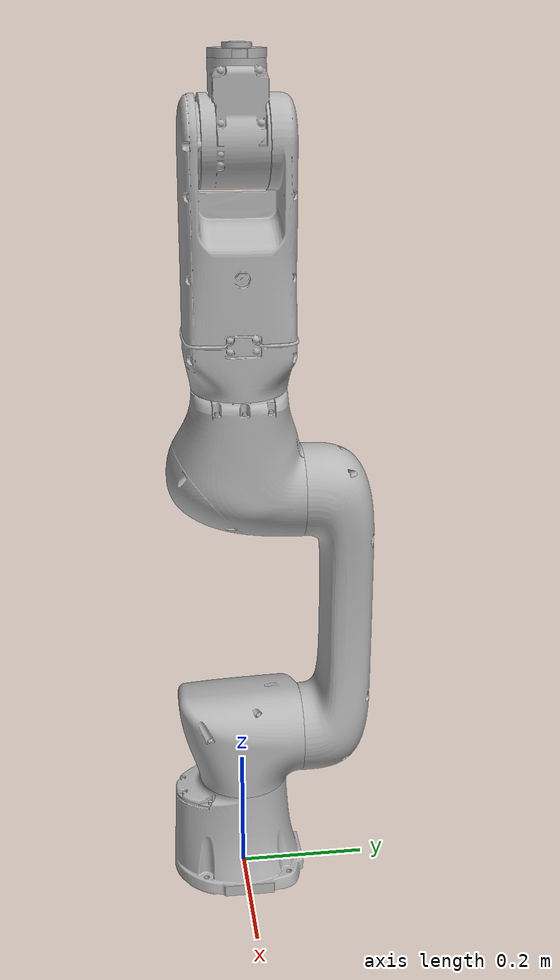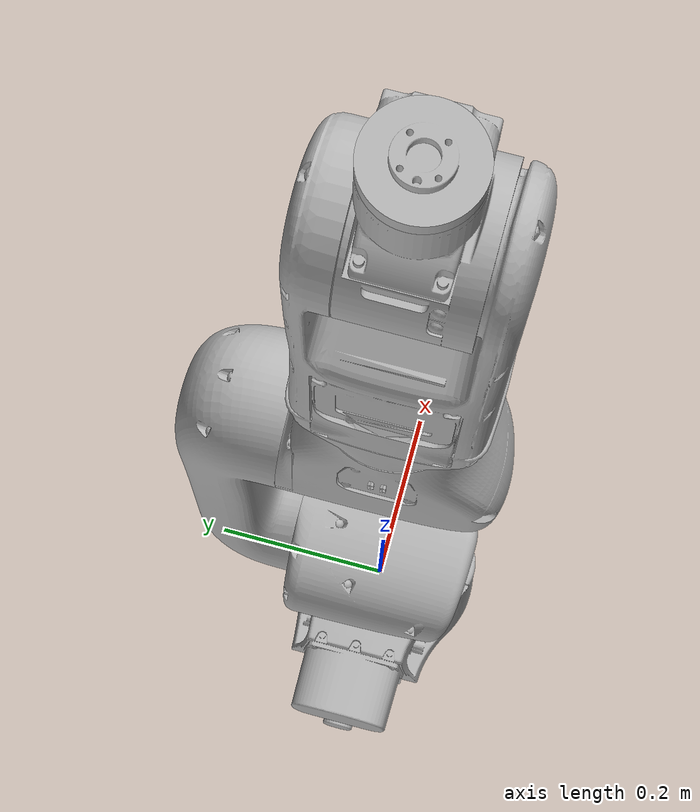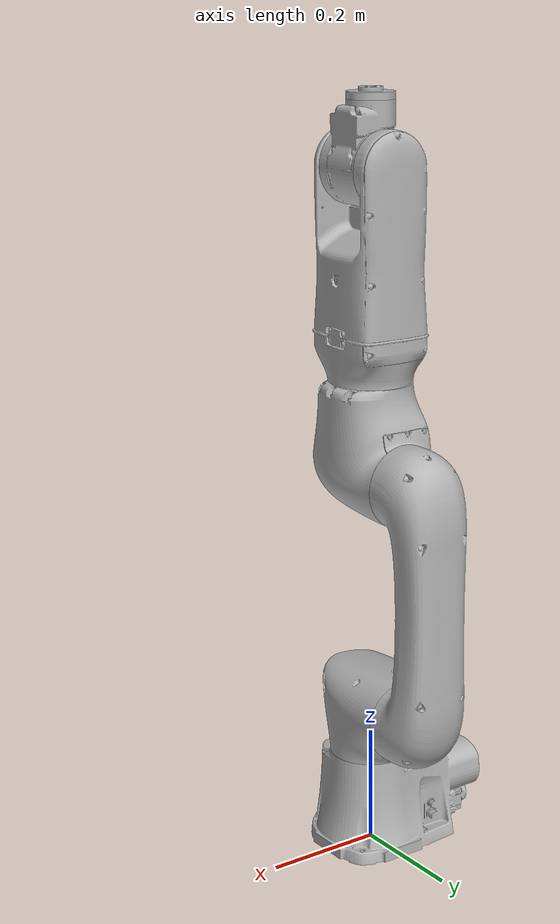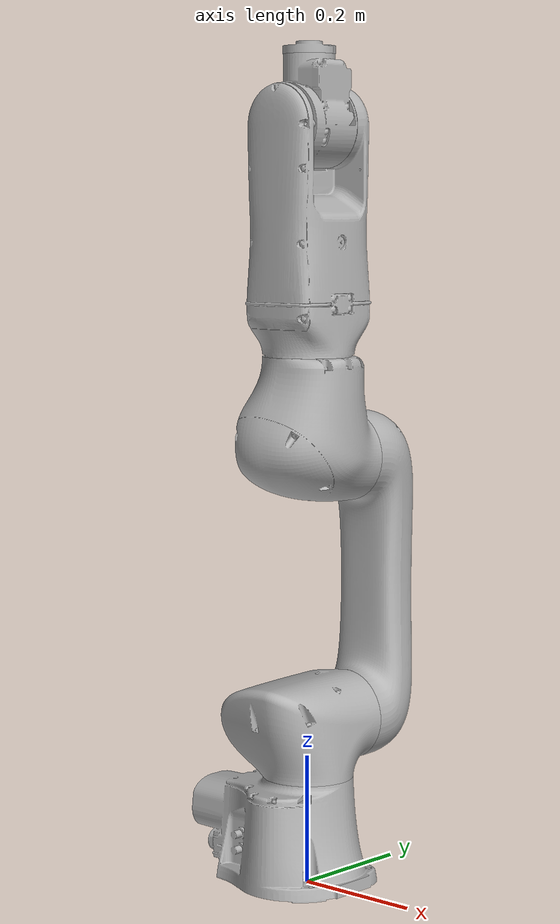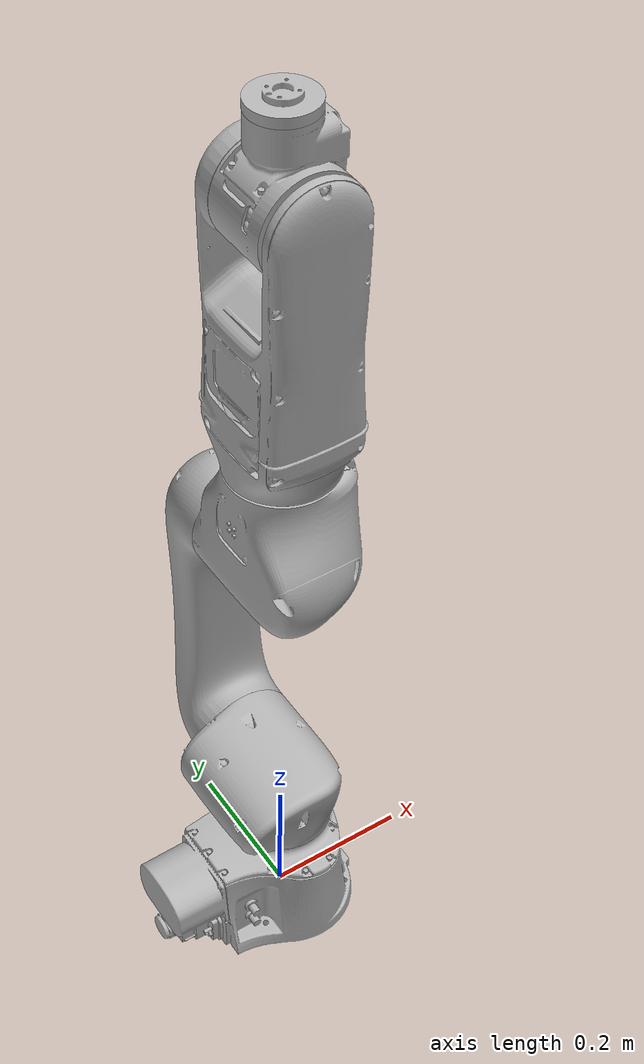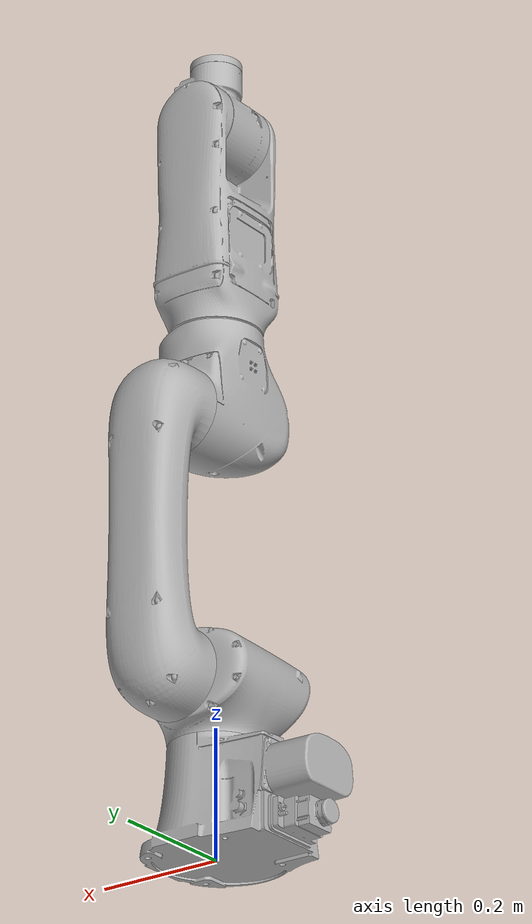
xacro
<?xml version="1.0" ?>
<robot name="Assista" xmlns:xacro="http://www.ros.org/wiki/xacro">

<!-- Enable setting arguments from the launch file -->
<xacro:arg name="use_sim" default="false" />
<xacro:arg name="use_fake_hardware" default="true" />
<xacro:arg name="robot_ip" default="127.0.0.1" />

<xacro:include filename="$(find melfa_assita_ros2_hw)/urdf/materials.xacro" />
<xacro:include filename="$(find melfa_assita_ros2_hw)/urdf/RV-5AS.gazebo" />
<xacro:include filename="$(find melfa_assita_ros2_hw)/ros2_control/melfa.ros2_control.xacro" />

<!-- Enable Gazebo Plugins -->
  <gazebo>
    <plugin filename="libgazebo_ros2_control.so" name="gazebo_ros2_control">
      <parameters>$(find melfa_assita_ros2_hw)/config/melfa_controller.yaml</parameters>
    </plugin>
  </gazebo>

<xacro:melfa_ros2_control name="melfaHW" robot_ip="$(arg robot_ip)"  use_sim="$(arg use_sim)" use_fake_hardware="$(arg use_fake_hardware)" />

<link name="world">

</link>

<link name="base_link">
  <inertial>
    <origin xyz="-0.03983651226402278 -0.007605722171635085 0.0795292300646967" rpy="0 0 0"/>
    <mass value="44.578325364776205"/>
    <inertia ixx="0.183163" iyy="0.311377" izz="0.308935" ixy="0.014262" iyz="0.002094" ixz="0.004808"/>
  </inertial>
  <visual>
    <origin xyz="0 0 0" rpy="0 0 0"/>
    <geometry>
      <mesh filename="package://melfa_assita_ros2_hw/meshes/base_link.stl" scale="0.001 0.001 0.001"/>
      <cylinder radius="0.5" length="1.0"/>
    </geometry>
    <material name="silver"/>
  </visual>
  <collision>
    <origin xyz="0 0 0" rpy="0 0 0"/>
    <geometry>
      <mesh filename="package://melfa_assita_ros2_hw/meshes/base_link.stl" scale="0.001 0.001 0.001"/>
    </geometry>
  </collision>
</link>

<link name="Link_1_1">
  <inertial>
    <origin xyz="-0.0178254958490297 0.003580380256641604 0.077127584023827" rpy="0 0 0"/>
    <mass value="30.517484297613862"/>
    <inertia ixx="0.122628" iyy="0.109719" izz="0.138698" ixy="-0.003265" iyz="0.002156" ixz="0.003964"/>
  </inertial>
  <visual>
    <origin xyz="-0.000321 -0.000483 -0.169215" rpy="0 0 0"/>
    <geometry>
      <mesh filename="package://melfa_assita_ros2_hw/meshes/Link_1_1.stl" scale="0.001 0.001 0.001"/>
    </geometry>
    <material name="silver"/>
  </visual>
  <collision>
    <origin xyz="-0.000321 -0.000483 -0.169215" rpy="0 0 0"/>
    <geometry>
      <mesh filename="package://melfa_assita_ros2_hw/meshes/Link_1_1.stl" scale="0.001 0.001 0.001"/>
    </geometry>
  </collision>
</link>

<link name="Link_2_1">
  <inertial>
    <origin xyz="4.112216997300463e-07 0.057572894819035755 0.20500042459043571" rpy="0 0 0"/>
    <mass value="40.15201189123674"/>
    <inertia ixx="1.065846" iyy="1.07798" izz="0.074735" ixy="-0.0" iyz="-0.0" ixz="1e-06"/>
  </inertial>
  <visual>
    <origin xyz="-0.000321 -0.091983 -0.252215" rpy="0 0 0"/>
    <geometry>
      <mesh filename="package://melfa_assita_ros2_hw/meshes/Link_2_1.stl" scale="0.001 0.001 0.001"/>
    </geometry>
    <material name="silver"/>
  </visual>
  <collision>
    <origin xyz="-0.000321 -0.091983 -0.252215" rpy="0 0 0"/>
    <geometry>
      <mesh filename="package://melfa_assita_ros2_hw/meshes/Link_2_1.stl" scale="0.001 0.001 0.001"/>
    </geometry>
  </collision>
</link>

<link name="Link_3_1">
  <inertial>
    <origin xyz="0.002409945789527904 -0.09056234460990852 0.04744786511656707" rpy="0 0 0"/>
    <mass value="37.70183465856231"/>
    <inertia ixx="0.213996" iyy="0.18222" izz="0.146997" ixy="-0.00227" iyz="0.008907" ixz="-0.004558"/>
  </inertial>
  <visual>
    <origin xyz="-0.000321 -0.091983 -0.662215" rpy="0 0 0"/>
    <geometry>
      <mesh filename="package://melfa_assita_ros2_hw/meshes/Link_3_1.stl" scale="0.001 0.001 0.001"/>
    </geometry>
    <material name="silver"/>
  </visual>
  <collision>
    <origin xyz="-0.000321 -0.091983 -0.662215" rpy="0 0 0"/>
    <geometry>
      <mesh filename="package://melfa_assita_ros2_hw/meshes/Link_3_1.stl" scale="0.001 0.001 0.001"/>
    </geometry>
  </collision>
</link>

<link name="Link_4_1">
  <inertial>
    <origin xyz="0.000610360450348679 0.0011924406845400205 0.15714957860817813" rpy="0 0 0"/>
    <mass value="43.96315697040174"/>
    <inertia ixx="0.546992" iyy="0.50159" izz="0.155822" ixy="3.7e-05" iyz="-0.010316" ixz="0.000504"/>
  </inertial>
  <visual>
    <origin xyz="-0.000488 -0.000483 -0.819715" rpy="0 0 0"/>
    <geometry>
      <mesh filename="package://melfa_assita_ros2_hw/meshes/Link_4_1.stl" scale="0.001 0.001 0.001"/>
    </geometry>
    <material name="silver"/>
  </visual>
  <collision>
    <origin xyz="-0.000488 -0.000483 -0.819715" rpy="0 0 0"/>
    <geometry>
      <mesh filename="package://melfa_assita_ros2_hw/meshes/Link_4_1.stl" scale="0.001 0.001 0.001"/>
    </geometry>
  </collision>
</link>

<link name="Link_5_1">
  <inertial>
    <origin xyz="0.0017870907547893461 0.051804939552911114 0.014816580185691208" rpy="0 0 0"/>
    <mass value="12.052149827136867"/>
    <inertia ixx="0.031312" iyy="0.032488" izz="0.02053" ixy="-1.1e-05" iyz="-0.000215" ixz="-0.001201"/>
  </inertial>
  <visual>
    <origin xyz="-0.000488 0.051017 -1.165215" rpy="0 0 0"/>
    <geometry>
      <mesh filename="package://melfa_assita_ros2_hw/meshes/Link_5_1.stl" scale="0.001 0.001 0.001"/>
    </geometry>
    <material name="silver"/>
  </visual>
  <collision>
    <origin xyz="-0.000488 0.051017 -1.165215" rpy="0 0 0"/>
    <geometry>
      <mesh filename="package://melfa_assita_ros2_hw/meshes/Link_5_1.stl" scale="0.001 0.001 0.001"/>
    </geometry>
  </collision>
</link>

<link name="Link_6_1">
  <inertial>
    <origin xyz="-8.485573520850299e-05 -4.6548377498128665e-07 0.006905734415827647" rpy="0 0 0"/>
    <mass value="0.5076989577168451"/>
    <inertia ixx="0.000196" iyy="0.000193" izz="0.000369" ixy="-0.0" iyz="0.0" ixz="-0.0"/>
  </inertial>
  <visual>
    <origin xyz="-0.000317 -0.001983 -1.271215" rpy="0 0 0"/>
    <geometry>
      <mesh filename="package://melfa_assita_ros2_hw/meshes/Link_6_1.stl" scale="0.001 0.001 0.001"/>
    </geometry>
    <material name="silver"/>
  </visual>
  <collision>
    <origin xyz="-0.000317 -0.001983 -1.271215" rpy="0 0 0"/>
    <geometry>
      <mesh filename="package://melfa_assita_ros2_hw/meshes/Link_6_1.stl" scale="0.001 0.001 0.001"/>
    </geometry>
  </collision>
</link>

<joint name="joint_0" type="fixed">
  <origin xyz="0 0 0" rpy="0 0 0"/>
  <parent link="world"/>
  <child link="base_link"/>
  </joint>

<joint name="joint_1" type="revolute">
  <origin xyz="0.000321 0.000483 0.169215" rpy="0 0 0"/>
  <parent link="base_link"/>
  <child link="Link_1_1"/>
  <axis xyz="0.0 0.0 1.0"/>
  <limit lower="${-(240 * pi)/180}" upper="${(240 * pi)/180}" effort="100" velocity="${(124*pi)/180}"/>
</joint>

<joint name="joint_2" type="revolute">
  <origin xyz="0.0 0.0915 0.083" rpy="0 0 0"/>
  <parent link="Link_1_1"/>
  <child link="Link_2_1"/>
  <axis xyz="0.0 1.0 -0.0"/>
  <limit lower="${-(148 * pi)/180}" upper="${(148 * pi)/180}" effort="100" velocity="${(124*pi)/180}"/>
</joint>

<joint name="joint_3" type="revolute">
  <origin xyz="0.0 0.0 0.41" rpy="0 0 0"/>
  <parent link="Link_2_1"/>
  <child link="Link_3_1"/>
  <axis xyz="-0.0 1.0 0.0"/>
  <limit lower="${-(150 * pi)/180}" upper="${(150 * pi)/180}" effort="100" velocity="${(124*pi)/180}"/>
</joint>

<joint name="joint_4" type="revolute">
  <origin xyz="0.000167 -0.0915 0.1575" rpy="0 0 0"/>
  <parent link="Link_3_1"/>
  <child link="Link_4_1"/>
  <axis xyz="0.0 0.0 1.0"/>
  <limit lower="${-(200 * pi)/180}" upper="${(200 * pi)/180}" effort="100" velocity="${(124*pi)/180}"/>
</joint>

<joint name="joint_5" type="revolute">
  <origin xyz="0.0 -0.0515 0.3455" rpy="0 0 0"/>
  <parent link="Link_4_1"/>
  <child link="Link_5_1"/>
  <axis xyz="0.0 1.0 -0.0"/>
  <limit lower="${-(120 * pi)/180}" upper="${(120 * pi)/180}" effort="100" velocity="${(356*pi)/180}"/>
</joint>

<joint name="joint_6" type="revolute">
  <origin xyz="-0.000171 0.053 0.106" rpy="0 0 0"/>
  <parent link="Link_5_1"/>
  <child link="Link_6_1"/>
  <axis xyz="0.0 0.0 1.0"/>
  <limit lower="${-(200 * pi)/180}" upper="${(200 * pi)/180}" effort="100" velocity="${(360*pi)/180}"/>
</joint>

</robot>

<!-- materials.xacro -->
<robot name="Assista" xmlns:xacro="http://www.ros.org/wiki/xacro" >

<material name="silver">
  <color rgba="0.700 0.700 0.700 1.000"/>
</material>

</robot>

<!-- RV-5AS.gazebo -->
<robot name="Assista" xmlns:xacro="http://www.ros.org/wiki/xacro" >

<xacro:property name="body_color" value="Gazebo/Silver" />

<gazebo>
  <plugin name="control" filename="libgazebo_ros_control.so"/>
</gazebo>
<gazebo reference="base_link">
  <material>${body_color}</material>
  <mu1>0.2</mu1>
  <mu2>0.2</mu2>
  <selfCollide>true</selfCollide>
  <gravity>true</gravity>
</gazebo>

<gazebo reference="Link_1_1">
  <material>${body_color}</material>
  <mu1>0.2</mu1>
  <mu2>0.2</mu2>
  <selfCollide>true</selfCollide>
</gazebo>

<gazebo reference="Link_2_1">
  <material>${body_color}</material>
  <mu1>0.2</mu1>
  <mu2>0.2</mu2>
  <selfCollide>true</selfCollide>
</gazebo>

<gazebo reference="Link_3_1">
  <material>${body_color}</material>
  <mu1>0.2</mu1>
  <mu2>0.2</mu2>
  <selfCollide>true</selfCollide>
</gazebo>

<gazebo reference="Link_4_1">
  <material>${body_color}</material>
  <mu1>0.2</mu1>
  <mu2>0.2</mu2>
  <selfCollide>true</selfCollide>
</gazebo>

<gazebo reference="Link_5_1">
  <material>${body_color}</material>
  <mu1>0.2</mu1>
  <mu2>0.2</mu2>
  <selfCollide>true</selfCollide>
</gazebo>

<gazebo reference="Link_6_1">
  <material>${body_color}</material>
  <mu1>0.2</mu1>
  <mu2>0.2</mu2>
  <selfCollide>true</selfCollide>
</gazebo>

</robot>
